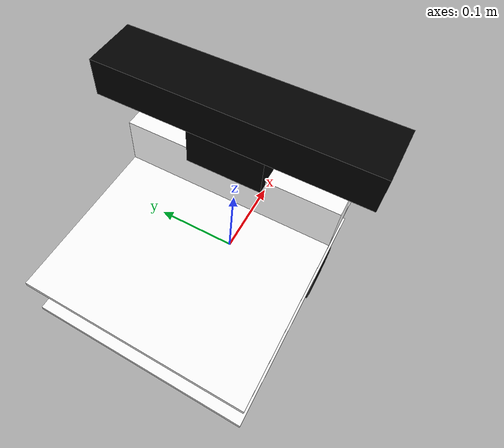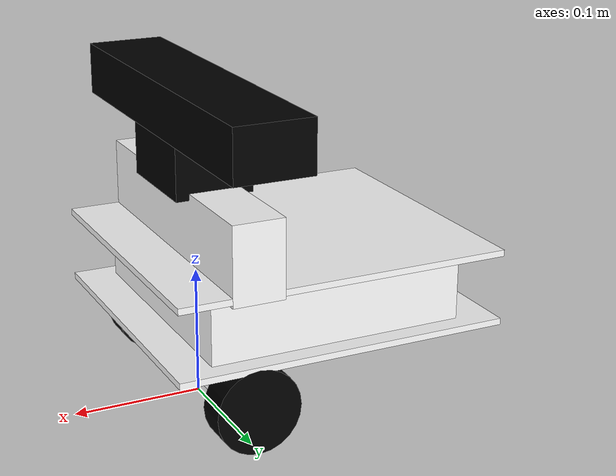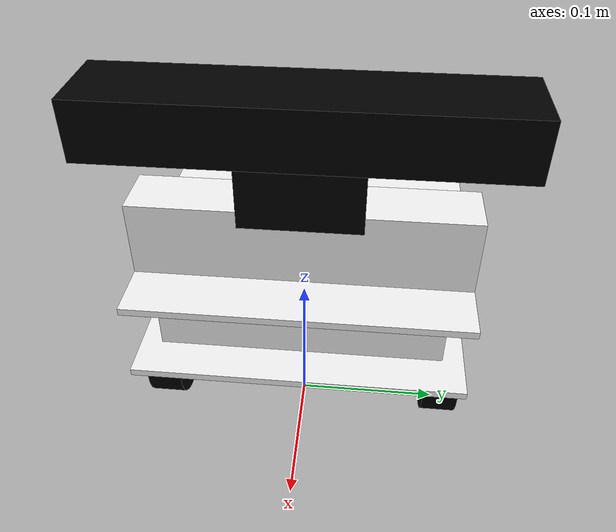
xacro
<?xml version="1.0"?>
 <robot name="linhsbot">
    <link name="base_link">
    	<pose> 0 0 0.0 0 0 0</pose>
      	<visual>
        	<geometry>
          		<box size="0.20 0.20 0.05"/>
        	</geometry>
        	<origin rpy="0 0 0" xyz="-0.07 0 0.09"/>
        	<material name="white">
          		<color rgba="1 1 1 1"/>
        	</material>
		</visual>
    </link>

    <!--  left wheel description -->
    <link name="wheel_left">
      <visual>
        <geometry>
          <cylinder length="0.025" radius="0.0325"/>
        </geometry>
        <origin rpy="1.57 0 0" xyz="0 0.1025 0.0325"/>
        <material name="black">
          <color rgba="0 0 0 1"/>
        </material>
      </visual>
    </link>

    <link name="motor_left">
      <visual>
        <geometry>
          <cylinder length="0.07" radius="0.015"/>
        </geometry>
        <origin rpy="1.57 0 0" xyz="0 0.05 0.0325"/>
        <material name="white">
        </material>
      </visual>
    </link>

    <!--  right wheel description -->
    <link name="wheel_right">
      <visual>
        <geometry>
          <cylinder length="0.025" radius="0.0325"/>
        </geometry>
        <origin rpy="1.57 0 0" xyz="0 -0.1025 0.0325"/>
          <material name="black"/>
      </visual>
    </link>

	<link name="motor_right">
      <visual>
        <geometry>
          <cylinder length="0.07" radius="0.015"/>
        </geometry>
        <origin rpy="1.57 0 0" xyz="0 -0.05 0.0325"/>
        <material name="white">
        </material>
      </visual>
    </link>

    <!-- wheel track description -->
    <link name="bottom_plate">
      <visual>
        <geometry>
          <box size="0.26 0.23 0.005"/>
        </geometry>
        <origin rpy="0 0 0" xyz="-0.07 0 0.065"/>
        <material name="white"/>
      </visual>
    </link>

    <!-- wheel track description -->
    <link name="top_plate">
      <visual>
        <geometry>
          <box size="0.26 0.23 0.005"/>
        </geometry>
        <origin rpy="0 0 0" xyz="-0.07 0 0.12"/>
        <material name="white"/>
      </visual>
    </link>

	<!--IMU-->
	<link name="imu_link">
      <visual>
        <geometry>
          <box size="0.01 0.02 0.005"/>
        </geometry>
        <origin rpy="0 0 0" xyz="-0.08 0 0.066"/>
        <material name="black"/>
      </visual>
    </link>

    <!-- camera_link description -->
    <link name="camera_link">
      <visual>
        <geometry>
          <box size="0.06 0.28 0.04"/>
        </geometry>
        <origin rpy="0 0 0" xyz="0 0 0.23"/>
        <material name="black"/>
      </visual>
    </link>

	<link name="camera_link_join">
       <visual>
         <geometry>
           <box size="0.04 0.23 0.06"/>
         </geometry>
         <origin rpy="0 0 0" xyz="0 0 0.145"/>
         <material name="white">
          <color rgba="1 1 1 1"/>
         </material>
       </visual>
     </link>

	<link name="camera_link_join1">
       <visual>
         <geometry>
           <box size="0.06 0.08 0.04"/>
         </geometry>
         <origin rpy="0 0 0" xyz="0 0 0.19"/>
         <material name="black"/>
       </visual>
     </link>

    <!-- JOIN ALL  -->
    <joint name="left_wheel_join" type="fixed">
      <parent link="base_link"/>
      <child link="wheel_left"/>
      <origin xyz="0 0 0"/>
    </joint>

    <joint name="right_wheel_join" type="fixed">
      <parent link="base_link"/>
      <child link="wheel_right"/>
      <origin xyz="0 0 0"/>
    </joint>

	<joint name="base_to_motor_left" type="fixed">
      <parent link="base_link"/>
      <child link="motor_left"/>
      <origin xyz="0 0 0"/>
    </joint>

    <joint name="base_to_motor_right" type="fixed">
      <parent link="base_link"/>
      <child link="motor_right"/>
      <origin xyz="0 0 0"/>
    </joint>

    <joint name="base_to_top_plate" type="fixed">
      <parent link="base_link"/>
      <child link="top_plate"/>
      <origin xyz="0 0 0"/>
    </joint>

    <joint name="base_to_bottom_plate" type="fixed">
      <parent link="base_link"/>
      <child link="bottom_plate"/>
      <origin xyz="0 0 0"/>
    </joint>

    <joint name="base_to_camera_link" type="fixed">
      <parent link="base_link"/>
      <child link="camera_link"/>
      <origin xyz="0 0 0"/>
    </joint>

	<joint name="base_to_imu" type="fixed">
      <parent link="base_link"/>
      <child link="imu_link"/>
      <origin xyz="0 0 0"/>
    </joint>

    <joint name="base_to_camera_link_att" type="fixed">
      <parent link="base_link"/>
      <child link="camera_link_join"/>
      <origin xyz="0 0 0"/>
    </joint>
	<joint name="base_to_camera_link_att1" type="fixed">
      <parent link="base_link"/>
      <child link="camera_link_join1"/>
      <origin xyz="0 0 0"/>
    </joint>
  </robot>
